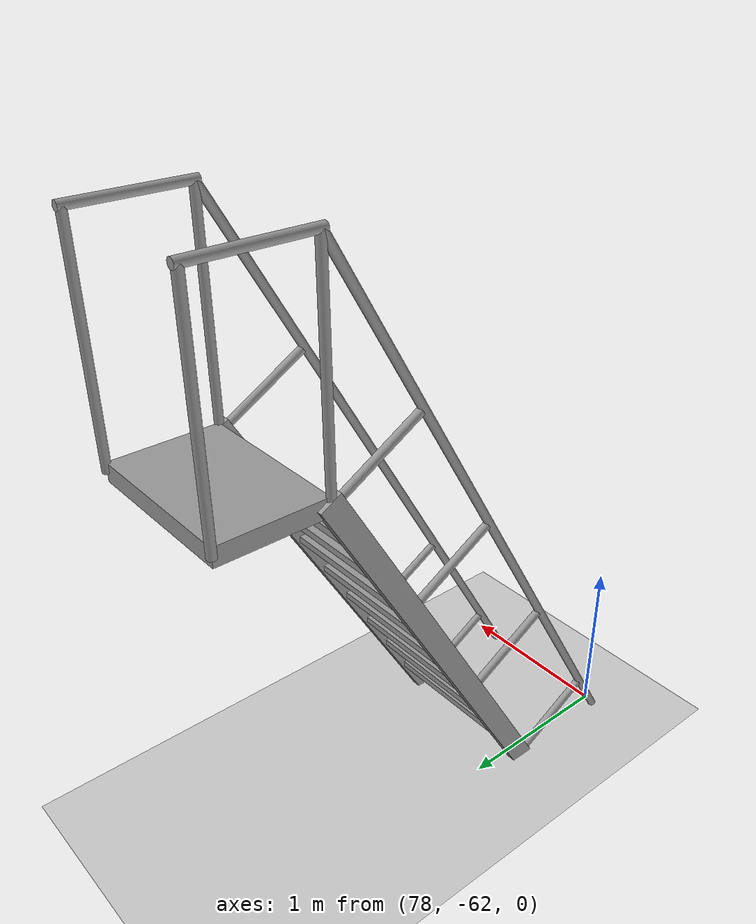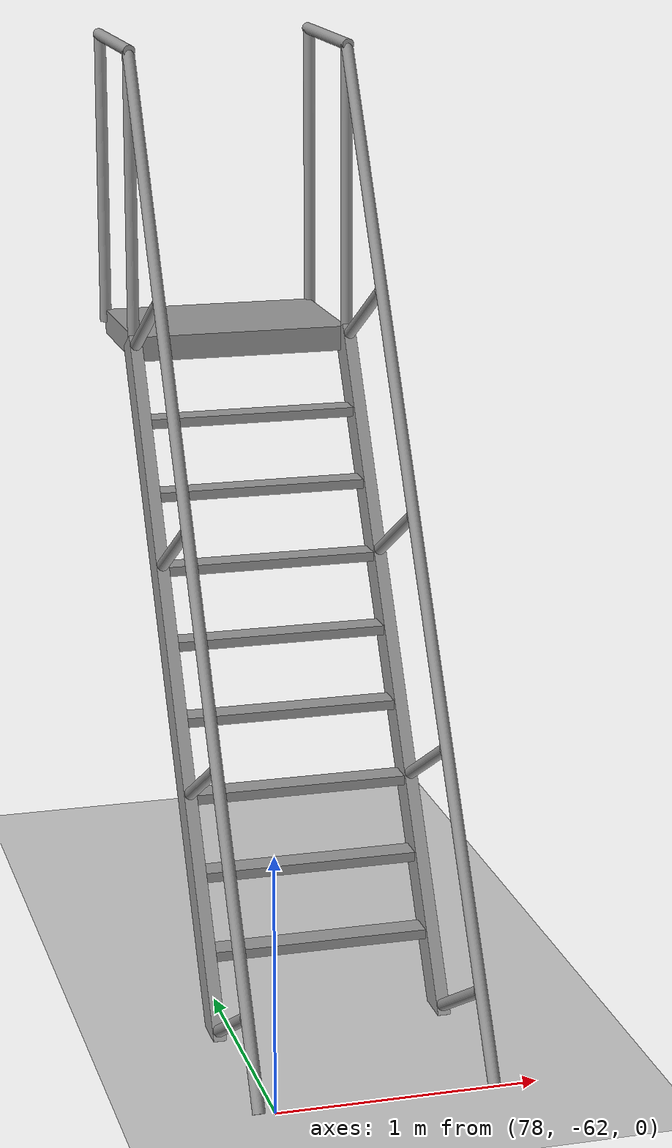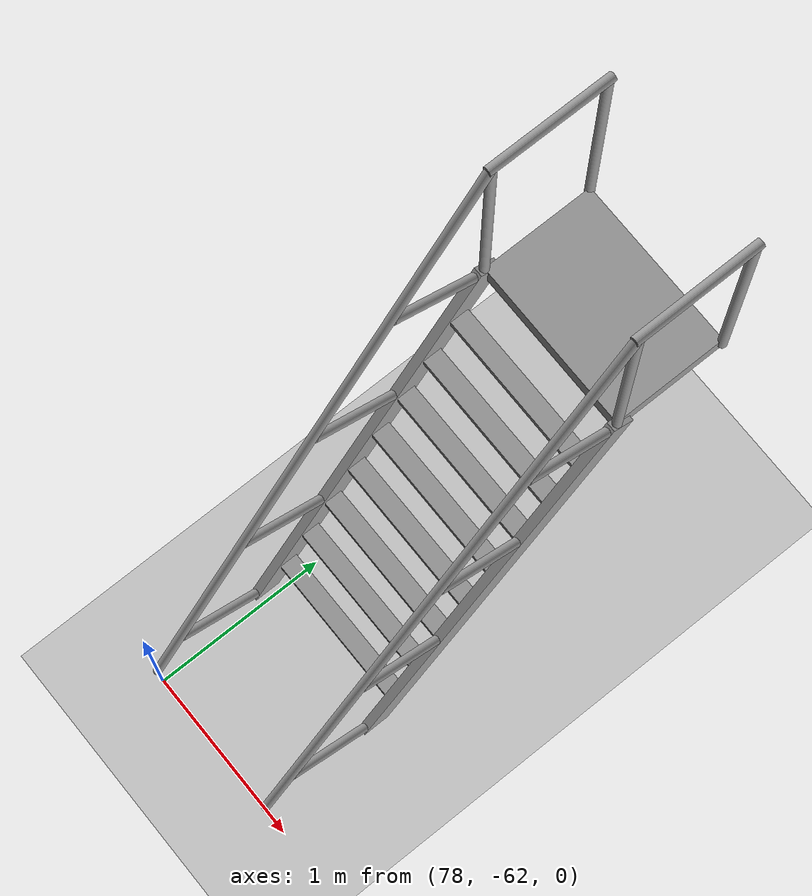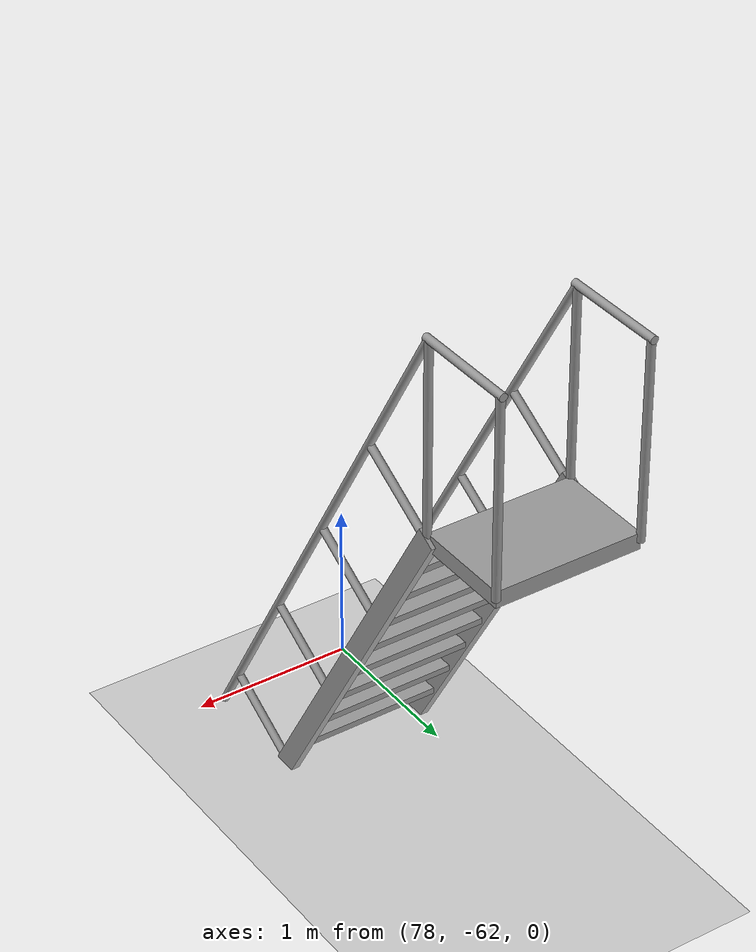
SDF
<sdf version="1.6">
 <world name="default">
  <model name="ground_plane">
   <static>1</static>
   <link name="link">
    <collision name="collision">
     <geometry><plane><normal>0 0 1</normal><size>100 100</size></plane></geometry>
     <surface><friction><ode><mu>100</mu><mu2>50</mu2></ode></friction></surface>
    </collision>
    <visual name="visual">
     <cast_shadows>0</cast_shadows>
     <geometry><plane><normal>0 0 1</normal><size>100 100</size></plane></geometry>
     <material>
      <script><uri>file://media/materials/scripts/gazebo.material</uri><name>Gazebo/Grey</name></script>
     </material>
    </visual>
   </link>
  </model>
  <model name="ladder_60deg_2rails">
   <static>1</static>
   <link name="step0">
    <pose>0 0.15396 0.266667 0 -0 0</pose>
    <inertial>
     <mass>9.75482</mass>
     <inertia>
      <ixx>0.00957124</ixx>
      <iyy>0.65963</iyy>
      <izz>0.666842</izz>
      <ixy>0</ixy>
      <ixz>0</ixz>
      <iyz>0</iyz>
     </inertia>
    </inertial>
    <collision name="collision"><geometry><box><size>0.9 0.1016 0.0381</size></box></geometry></collision>
    <visual name="visual">
     <geometry><box><size>0.9 0.1016 0.0381</size></box></geometry>
     <material>
      <script><uri>file://media/materials/scripts/gazebo.material</uri><name>Gazebo/Grey</name></script>
     </material>
    </visual>
   </link>
   <link name="step1">
    <pose>0 0.30792 0.533333 0 -0 0</pose>
    <inertial>
     <mass>9.75482</mass>
     <inertia>
      <ixx>0.00957124</ixx>
      <iyy>0.65963</iyy>
      <izz>0.666842</izz>
      <ixy>0</ixy>
      <ixz>0</ixz>
      <iyz>0</iyz>
     </inertia>
    </inertial>
    <collision name="collision"><geometry><box><size>0.9 0.1016 0.0381</size></box></geometry></collision>
    <visual name="visual">
     <geometry><box><size>0.9 0.1016 0.0381</size></box></geometry>
     <material>
      <script><uri>file://media/materials/scripts/gazebo.material</uri><name>Gazebo/Grey</name></script>
     </material>
    </visual>
   </link>
   <link name="step2">
    <pose>0 0.46188 0.8 0 -0 0</pose>
    <inertial>
     <mass>9.75482</mass>
     <inertia>
      <ixx>0.00957124</ixx>
      <iyy>0.65963</iyy>
      <izz>0.666842</izz>
      <ixy>0</ixy>
      <ixz>0</ixz>
      <iyz>0</iyz>
     </inertia>
    </inertial>
    <collision name="collision"><geometry><box><size>0.9 0.1016 0.0381</size></box></geometry></collision>
    <visual name="visual">
     <geometry><box><size>0.9 0.1016 0.0381</size></box></geometry>
     <material>
      <script><uri>file://media/materials/scripts/gazebo.material</uri><name>Gazebo/Grey</name></script>
     </material>
    </visual>
   </link>
   <link name="step3">
    <pose>0 0.61584 1.06667 0 -0 0</pose>
    <inertial>
     <mass>9.75482</mass>
     <inertia>
      <ixx>0.00957124</ixx>
      <iyy>0.65963</iyy>
      <izz>0.666842</izz>
      <ixy>0</ixy>
      <ixz>0</ixz>
      <iyz>0</iyz>
     </inertia>
    </inertial>
    <collision name="collision"><geometry><box><size>0.9 0.1016 0.0381</size></box></geometry></collision>
    <visual name="visual">
     <geometry><box><size>0.9 0.1016 0.0381</size></box></geometry>
     <material>
      <script><uri>file://media/materials/scripts/gazebo.material</uri><name>Gazebo/Grey</name></script>
     </material>
    </visual>
   </link>
   <link name="step4">
    <pose>0 0.7698 1.33333 0 -0 0</pose>
    <inertial>
     <mass>9.75482</mass>
     <inertia>
      <ixx>0.00957124</ixx>
      <iyy>0.65963</iyy>
      <izz>0.666842</izz>
      <ixy>0</ixy>
      <ixz>0</ixz>
      <iyz>0</iyz>
     </inertia>
    </inertial>
    <collision name="collision"><geometry><box><size>0.9 0.1016 0.0381</size></box></geometry></collision>
    <visual name="visual">
     <geometry><box><size>0.9 0.1016 0.0381</size></box></geometry>
     <material>
      <script><uri>file://media/materials/scripts/gazebo.material</uri><name>Gazebo/Grey</name></script>
     </material>
    </visual>
   </link>
   <link name="step5">
    <pose>0 0.92376 1.6 0 -0 0</pose>
    <inertial>
     <mass>9.75482</mass>
     <inertia>
      <ixx>0.00957124</ixx>
      <iyy>0.65963</iyy>
      <izz>0.666842</izz>
      <ixy>0</ixy>
      <ixz>0</ixz>
      <iyz>0</iyz>
     </inertia>
    </inertial>
    <collision name="collision"><geometry><box><size>0.9 0.1016 0.0381</size></box></geometry></collision>
    <visual name="visual">
     <geometry><box><size>0.9 0.1016 0.0381</size></box></geometry>
     <material>
      <script><uri>file://media/materials/scripts/gazebo.material</uri><name>Gazebo/Grey</name></script>
     </material>
    </visual>
   </link>
   <link name="step6">
    <pose>0 1.07772 1.86667 0 -0 0</pose>
    <inertial>
     <mass>9.75482</mass>
     <inertia>
      <ixx>0.00957124</ixx>
      <iyy>0.65963</iyy>
      <izz>0.666842</izz>
      <ixy>0</ixy>
      <ixz>0</ixz>
      <iyz>0</iyz>
     </inertia>
    </inertial>
    <collision name="collision"><geometry><box><size>0.9 0.1016 0.0381</size></box></geometry></collision>
    <visual name="visual">
     <geometry><box><size>0.9 0.1016 0.0381</size></box></geometry>
     <material>
      <script><uri>file://media/materials/scripts/gazebo.material</uri><name>Gazebo/Grey</name></script>
     </material>
    </visual>
   </link>
   <link name="step7">
    <pose>0 1.23168 2.13333 0 -0 0</pose>
    <inertial>
     <mass>9.75482</mass>
     <inertia>
      <ixx>0.00957124</ixx>
      <iyy>0.65963</iyy>
      <izz>0.666842</izz>
      <ixy>0</ixy>
      <ixz>0</ixz>
      <iyz>0</iyz>
     </inertia>
    </inertial>
    <collision name="collision"><geometry><box><size>0.9 0.1016 0.0381</size></box></geometry></collision>
    <visual name="visual">
     <geometry><box><size>0.9 0.1016 0.0381</size></box></geometry>
     <material>
      <script><uri>file://media/materials/scripts/gazebo.material</uri><name>Gazebo/Grey</name></script>
     </material>
    </visual>
   </link>
   <link name="landing">
    <pose>0 1.68564 2.4 0 -0 0</pose>
    <inertial>
     <mass>57.6072</mass>
     <inertia><ixx>1.73518</ixx><iyy>3.89545</iyy><izz>5.6167</izz><ixy>0</ixy><ixz>0</ixz><iyz>0</iyz></inertia>
    </inertial>
    <collision name="collision"><geometry><box><size>0.9 0.6 0.1016</size></box></geometry></collision>
    <visual name="visual">
     <geometry><box><size>0.9 0.6 0.1016</size></box></geometry>
     <material>
      <script><uri>file://media/materials/scripts/gazebo.material</uri><name>Gazebo/Grey</name></script>
     </material>
    </visual>
   </link>
   <link name="left_side_wall">
    <pose>-0.45 0.69282 1.2 1.0472 -0 0</pose>
    <collision name="collision"><geometry><box><size>0.0508 2.85128 0.13</size></box></geometry></collision>
    <visual name="visual">
     <geometry><box><size>0.0508 2.85128 0.13</size></box></geometry>
     <material>
      <script><uri>file://media/materials/scripts/gazebo.material</uri><name>Gazebo/Grey</name></script>
     </material>
    </visual>
   </link>
   <link name="right_side_wall">
    <pose>0.45 0.69282 1.2 1.0472 -0 0</pose>
    <collision name="collision"><geometry><box><size>0.0508 2.85128 0.13</size></box></geometry></collision>
    <visual name="visual">
     <geometry><box><size>0.0508 2.85128 0.13</size></box></geometry>
     <material>
      <script><uri>file://media/materials/scripts/gazebo.material</uri><name>Gazebo/Grey</name></script>
     </material>
    </visual>
   </link>
   <link name="left_railing_long">
    <pose>-0.45 0.34282 1.80622 -0.523599 0 0</pose>
    <collision name="collision">
     <geometry><cylinder><radius>0.02413</radius><length>4.17128</length></cylinder></geometry>
    </collision>
    <visual name="visual">
     <geometry><cylinder><radius>0.02413</radius><length>4.17128</length></cylinder></geometry>
     <material>
      <script><uri>file://media/materials/scripts/gazebo.material</uri><name>Gazebo/Grey</name></script>
     </material>
    </visual>
   </link>
   <link name="left_railing_upright0">
    <pose>-0.45 -0.274963 0.15875 1.0472 -0 0</pose>
    <collision name="collision">
     <geometry><cylinder><radius>0.02413</radius><length>0.541218</length></cylinder></geometry>
    </collision>
    <visual name="visual">
     <geometry><cylinder><radius>0.02413</radius><length>0.541218</length></cylinder></geometry>
     <material>
      <script><uri>file://media/materials/scripts/gazebo.material</uri><name>Gazebo/Grey</name></script>
     </material>
    </visual>
   </link>
   <link name="left_railing_upright1">
    <pose>-0.45 0.186917 0.95875 1.0472 -0 0</pose>
    <collision name="collision">
     <geometry><cylinder><radius>0.02413</radius><length>0.541218</length></cylinder></geometry>
    </collision>
    <visual name="visual">
     <geometry><cylinder><radius>0.02413</radius><length>0.541218</length></cylinder></geometry>
     <material>
      <script><uri>file://media/materials/scripts/gazebo.material</uri><name>Gazebo/Grey</name></script>
     </material>
    </visual>
   </link>
   <link name="left_railing_upright2">
    <pose>-0.45 0.648797 1.75875 1.0472 -0 0</pose>
    <collision name="collision">
     <geometry><cylinder><radius>0.02413</radius><length>0.541218</length></cylinder></geometry>
    </collision>
    <visual name="visual">
     <geometry><cylinder><radius>0.02413</radius><length>0.541218</length></cylinder></geometry>
     <material>
      <script><uri>file://media/materials/scripts/gazebo.material</uri><name>Gazebo/Grey</name></script>
     </material>
    </visual>
   </link>
   <link name="left_railing_upright3">
    <pose>-0.45 1.11068 2.55875 1.0472 -0 0</pose>
    <collision name="collision">
     <geometry><cylinder><radius>0.02413</radius><length>0.541218</length></cylinder></geometry>
    </collision>
    <visual name="visual">
     <geometry><cylinder><radius>0.02413</radius><length>0.541218</length></cylinder></geometry>
     <material>
      <script><uri>file://media/materials/scripts/gazebo.material</uri><name>Gazebo/Grey</name></script>
     </material>
    </visual>
   </link>
   <link name="left_railing_landing_top">
    <pose>-0.45 1.68564 3.61244 1.5708 -0 0</pose>
    <collision name="collision">
     <geometry><cylinder><radius>0.02413</radius><length>0.64826</length></cylinder></geometry>
    </collision>
    <visual name="visual">
     <geometry><cylinder><radius>0.02413</radius><length>0.64826</length></cylinder></geometry>
     <material>
      <script><uri>file://media/materials/scripts/gazebo.material</uri><name>Gazebo/Grey</name></script>
     </material>
    </visual>
   </link>
   <link name="left_railing_landing_upright_0">
    <pose>-0.45 1.38564 3.00622 0 -0 0</pose>
    <collision name="collision">
     <geometry><cylinder><radius>0.02413</radius><length>1.21244</length></cylinder></geometry>
    </collision>
    <visual name="visual">
     <geometry><cylinder><radius>0.02413</radius><length>1.21244</length></cylinder></geometry>
     <material>
      <script><uri>file://media/materials/scripts/gazebo.material</uri><name>Gazebo/Grey</name></script>
     </material>
    </visual>
   </link>
   <link name="left_railing_landing_upright_1">
    <pose>-0.45 1.98564 3.00622 0 -0 0</pose>
    <collision name="collision">
     <geometry><cylinder><radius>0.02413</radius><length>1.21244</length></cylinder></geometry>
    </collision>
    <visual name="visual">
     <geometry><cylinder><radius>0.02413</radius><length>1.21244</length></cylinder></geometry>
     <material>
      <script><uri>file://media/materials/scripts/gazebo.material</uri><name>Gazebo/Grey</name></script>
     </material>
    </visual>
   </link>
   <link name="right_railing_long">
    <pose>0.45 0.34282 1.80622 -0.523599 0 0</pose>
    <collision name="collision">
     <geometry><cylinder><radius>0.02413</radius><length>4.17128</length></cylinder></geometry>
    </collision>
    <visual name="visual">
     <geometry><cylinder><radius>0.02413</radius><length>4.17128</length></cylinder></geometry>
     <material>
      <script><uri>file://media/materials/scripts/gazebo.material</uri><name>Gazebo/Grey</name></script>
     </material>
    </visual>
   </link>
   <link name="right_railing_upright0">
    <pose>0.45 -0.274963 0.15875 1.0472 -0 0</pose>
    <collision name="collision">
     <geometry><cylinder><radius>0.02413</radius><length>0.541218</length></cylinder></geometry>
    </collision>
    <visual name="visual">
     <geometry><cylinder><radius>0.02413</radius><length>0.541218</length></cylinder></geometry>
     <material>
      <script><uri>file://media/materials/scripts/gazebo.material</uri><name>Gazebo/Grey</name></script>
     </material>
    </visual>
   </link>
   <link name="right_railing_upright1">
    <pose>0.45 0.186917 0.95875 1.0472 -0 0</pose>
    <collision name="collision">
     <geometry><cylinder><radius>0.02413</radius><length>0.541218</length></cylinder></geometry>
    </collision>
    <visual name="visual">
     <geometry><cylinder><radius>0.02413</radius><length>0.541218</length></cylinder></geometry>
     <material>
      <script><uri>file://media/materials/scripts/gazebo.material</uri><name>Gazebo/Grey</name></script>
     </material>
    </visual>
   </link>
   <link name="right_railing_upright2">
    <pose>0.45 0.648797 1.75875 1.0472 -0 0</pose>
    <collision name="collision">
     <geometry><cylinder><radius>0.02413</radius><length>0.541218</length></cylinder></geometry>
    </collision>
    <visual name="visual">
     <geometry><cylinder><radius>0.02413</radius><length>0.541218</length></cylinder></geometry>
     <material>
      <script><uri>file://media/materials/scripts/gazebo.material</uri><name>Gazebo/Grey</name></script>
     </material>
    </visual>
   </link>
   <link name="right_railing_upright3">
    <pose>0.45 1.11068 2.55875 1.0472 -0 0</pose>
    <collision name="collision">
     <geometry><cylinder><radius>0.02413</radius><length>0.541218</length></cylinder></geometry>
    </collision>
    <visual name="visual">
     <geometry><cylinder><radius>0.02413</radius><length>0.541218</length></cylinder></geometry>
     <material>
      <script><uri>file://media/materials/scripts/gazebo.material</uri><name>Gazebo/Grey</name></script>
     </material>
    </visual>
   </link>
   <link name="right_railing_landing_top">
    <pose>0.45 1.68564 3.61244 1.5708 -0 0</pose>
    <collision name="collision">
     <geometry><cylinder><radius>0.02413</radius><length>0.64826</length></cylinder></geometry>
    </collision>
    <visual name="visual">
     <geometry><cylinder><radius>0.02413</radius><length>0.64826</length></cylinder></geometry>
     <material>
      <script><uri>file://media/materials/scripts/gazebo.material</uri><name>Gazebo/Grey</name></script>
     </material>
    </visual>
   </link>
   <link name="right_railing_landing_upright_0">
    <pose>0.45 1.38564 3.00622 0 -0 0</pose>
    <collision name="collision">
     <geometry><cylinder><radius>0.02413</radius><length>1.21244</length></cylinder></geometry>
    </collision>
    <visual name="visual">
     <geometry><cylinder><radius>0.02413</radius><length>1.21244</length></cylinder></geometry>
     <material>
      <script><uri>file://media/materials/scripts/gazebo.material</uri><name>Gazebo/Grey</name></script>
     </material>
    </visual>
   </link>
   <link name="right_railing_landing_upright_1">
    <pose>0.45 1.98564 3.00622 0 -0 0</pose>
    <collision name="collision">
     <geometry><cylinder><radius>0.02413</radius><length>1.21244</length></cylinder></geometry>
    </collision>
    <visual name="visual">
     <geometry><cylinder><radius>0.02413</radius><length>1.21244</length></cylinder></geometry>
     <material>
      <script><uri>file://media/materials/scripts/gazebo.material</uri><name>Gazebo/Grey</name></script>
     </material>
    </visual>
   </link>
   <pose>78.3894 -61.2924 0 0 -0 0</pose>
  </model>
  <model name="asphalt_plane">
   <static>1</static>
   <link name="link">
    <collision name="collision"><geometry><box><size>20 20 0.1</size></box></geometry></collision>
    <visual name="visual">
     <cast_shadows>0</cast_shadows>
     <geometry><box><size>20 20 0.1</size></box></geometry>
     <material>
      <script>
       <uri>model://asphalt_plane/materials/scripts</uri>
       <uri>model://asphalt_plane/materials/textures</uri>
       <name>vrc/asphalt</name>
      </script>
     </material>
    </visual>
   </link>
   <pose>3.33156 -1.84021 0 0 -0 0</pose>
  </model>
 </world>
</sdf>
